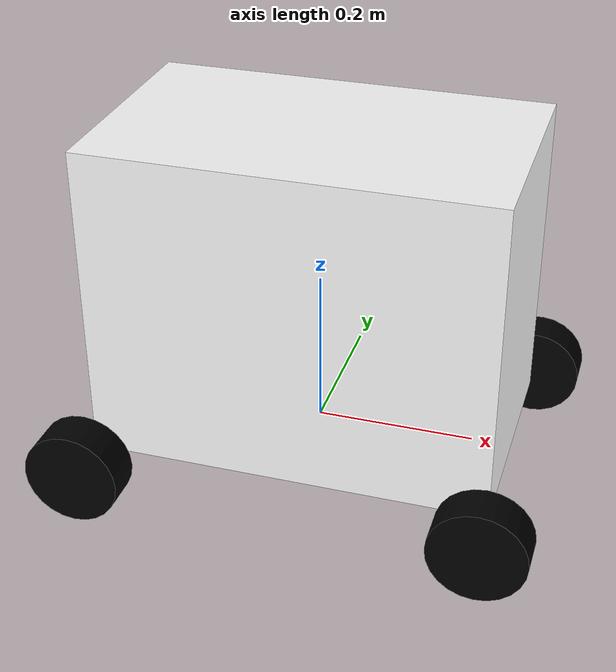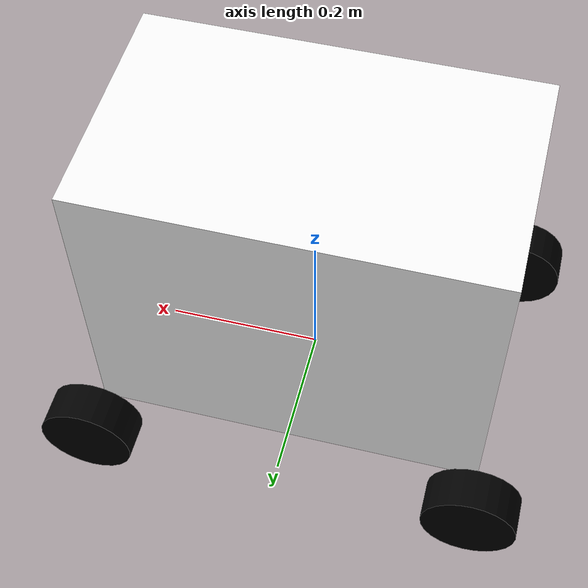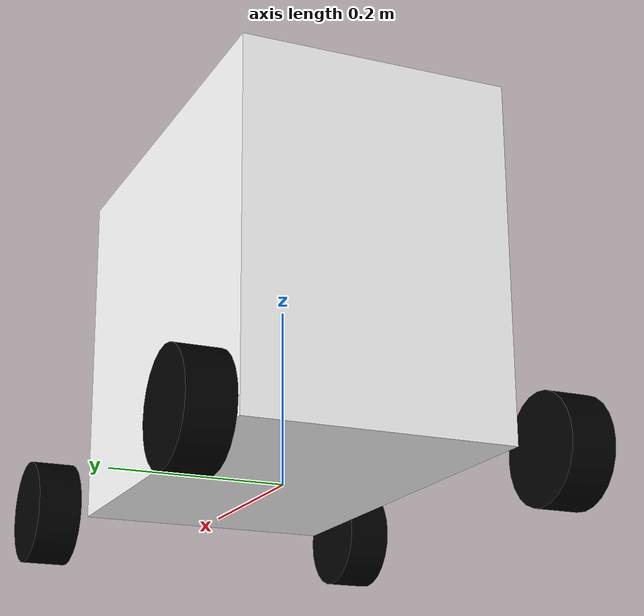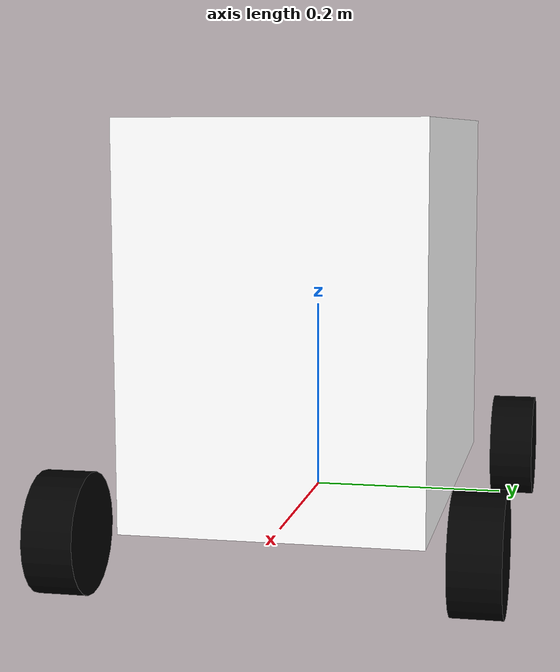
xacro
<?xml version="1.0"?>

<robot name="omni_base" xmlns:xacro="http://www.ros.org/wiki/xacro">

	<!--  see Modern Robotics	-->
	<xacro:property name="omni_l" value="0.25" />
	<xacro:property name="omni_w" value="0.2" />
	<xacro:property name="chassis_h" value="0.4" />

	<xacro:property name="length_wheel" value="0.05" />
	<xacro:property name="radius_wheel" value="0.06" />
	<xacro:property name="camera_link" value="0.05" />
        <xacro:property name="PI" value="3.1415926"/>
	<xacro:macro name="default_inertial" params="mass">
               <inertial>
                       <mass value="${mass}" />
                       <inertia ixx="0.01" ixy="0.0"
                                ixz="0.0"
                                iyy="0.01" iyz="0.0"
                                izz="0.01" />
               </inertial>
	</xacro:macro>
    <link name="dummy">
    </link>
	<link name="base_footprint">
   		<visual>
			<geometry>
      				<box size="0.001 0.001 0.001"/>
     			</geometry>
			<origin rpy="0 0 0" xyz="0 0 0"/>
   		</visual>
		<xacro:default_inertial mass="0.0001"/>
 	</link>
   <joint name="dummy_joint" type="fixed">
     <parent link="dummy"/>
     <child link="base_footprint"/>
   </joint>

	<gazebo reference="base_footprint">
		<material>Gazebo/Green</material>
		<turnGravityOff>false</turnGravityOff>
	</gazebo>

	<joint name="base_footprint_joint" type="fixed">
		<origin xyz="0 0 0" />
		<parent link="base_footprint" />
		<child link="omni_base_link" />
	</joint>

	<link name="omni_base_link">
   		<visual>
			<geometry>
      				<box size="${2*(omni_w-length_wheel)} ${2*omni_l} ${chassis_h}"/>
     			</geometry>
			<origin rpy="0 0 ${PI/2}" xyz="0 0 ${chassis_h/2.0}"/>
			<material name="white">　　　
				<color rgba="1 1 1 1"/>
			</material>
   		</visual>
		<xacro:default_inertial mass="20"/>
 	</link>

 	<link name="wheel_1">
   		<visual>
     			<geometry>
       				<cylinder length="${length_wheel}" radius="${radius_wheel}"/>
     			</geometry>
			<origin rpy="0 0 0" xyz="0 0 0"/>
   			<material name="black">
				<color rgba="0 0 0 1"/>
			</material>
		</visual>
		  <mu1>0.5</mu1>
		    <mu2>0.5</mu2>
		<xacro:default_inertial mass="0.5"/>
 	</link>

  	<link name="wheel_2">
   		<visual>
     			<geometry>
       				<cylinder length="${length_wheel}" radius="${radius_wheel}"/>
     			</geometry>
			<origin rpy="0 0 0" xyz="0 0 0"/>
   			<material name="black"/>
   		</visual>
		   <mu1>0.5</mu1>
		    <mu2>0.5</mu2>
		<xacro:default_inertial mass="0.5"/>

 	</link>

 	<link name="wheel_3">
   		<visual>
     			<geometry>
       				<cylinder length="${length_wheel}" radius="${radius_wheel}"/>
     			</geometry>

			<origin rpy="0 0 0" xyz="0 0 0"/>
   			<material name="black"/>
   		</visual>
		 <mu1>0.5</mu1>
		    <mu2>0.5</mu2>
		<xacro:default_inertial mass="0.5"/>
 	</link>

 	<link name="wheel_4">
   		<visual>
     			<geometry>
       				<cylinder length="${length_wheel}" radius="${radius_wheel}"/>
     			</geometry>
			<origin rpy="0 0 0" xyz="0 0 0" />
   			<material name="black"/>
   		</visual>
		   <mu1>0.5</mu1>
		    <mu2>0.5</mu2>
		<xacro:default_inertial mass="0.5"/>

 	</link>

 <joint name="base_to_wheel1" type="continuous">
   <parent link="omni_base_link"/>
   <child link="wheel_1"/>
   <origin rpy="${-PI/2} 0 0" xyz="${omni_l} ${omni_w} 0"/>
   <axis xyz="0 0 1" />
 </joint>

 <joint name="base_to_wheel2" type="continuous">
   <axis xyz="0 0 1" />
   <anchor xyz="0 0 0" />
   <limit effort="100" velocity="100" />
   <parent link="omni_base_link"/>
   <child link="wheel_2"/>
   <origin rpy="${-PI/2} 0 0" xyz="-${omni_l} ${omni_w} 0"/>
</joint>

 <joint name="base_to_wheel3" type="continuous">
   <parent link="omni_base_link"/>
   <axis xyz="0 0 1" />
   <child link="wheel_3"/>
   <origin rpy="${-PI/2} 0 0" xyz="${omni_l} -${omni_w} 0"/>
 </joint>

 <joint name="base_to_wheel4" type="continuous">
   <parent link="omni_base_link"/>
   <axis xyz="0 0 1" />
   <child link="wheel_4"/>
   <origin rpy="${-PI/2} 0 0" xyz="-${omni_l} -${omni_w} 0"/>
 </joint>

<!-- gazebo插件设置相关 -->

   <gazebo reference="omni_base_link">
    <material>Gazebo/Orange</material>
  </gazebo>

 <gazebo reference="wheel_1">
        <material>Gazebo/Red</material>
 </gazebo>

 <gazebo reference="wheel_2">
        <material>Gazebo/Black</material>
 </gazebo>

 <gazebo reference="wheel_3">
        <material>Gazebo/Red</material>
 </gazebo>

 <gazebo reference="wheel_4">
        <material>Gazebo/Black</material>
 </gazebo>

  <!-- ros_control plugin -->

  <!-- Drive controller -->

<!-- gazebo插件设置相关结束 -->

<gazebo reference="dummy">
	<kinematic>1</kinematic>
</gazebo>

</robot>
